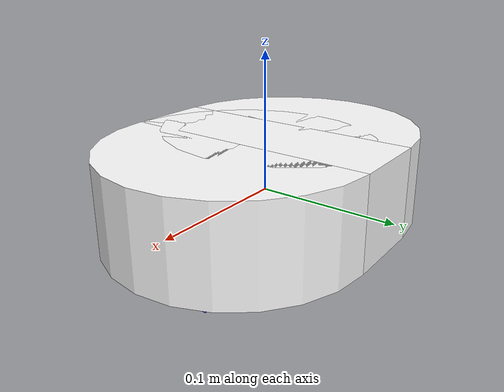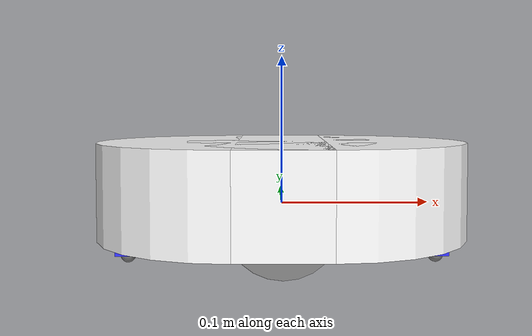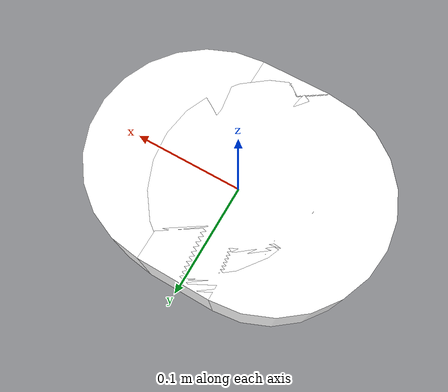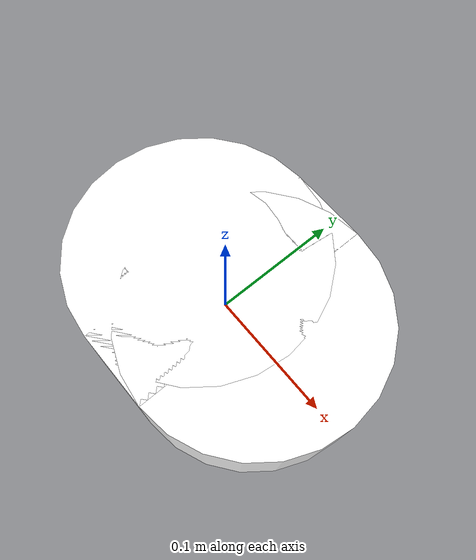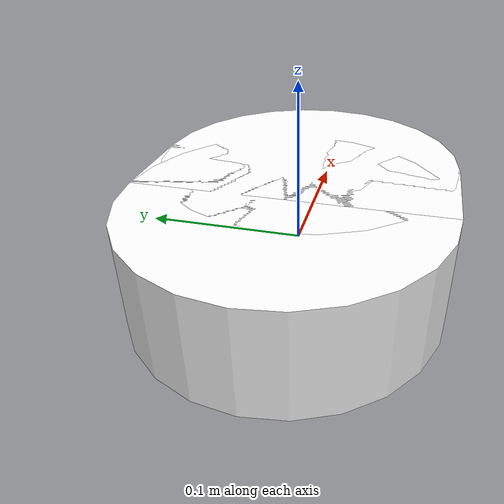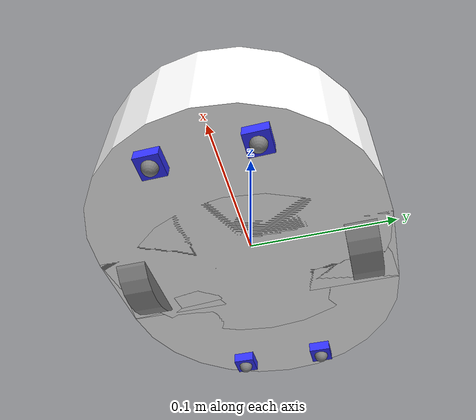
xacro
<?xml version="1.0"?>
<robot xmlns:xacro="http://www.ros.org.wiki.xacro">

    <xacro:include filename="rpibot_colors.xacro"/>
    <xacro:include filename="inertial_macros.xacro"/>

    <xacro:property name="robot_length" value="0.250"/>
    <xacro:property name="robot_width" value="0.190"/>
    <xacro:property name="robot_height" value="0.065"/>
    <xacro:property name="wheel_radius" value="0.035"/>
    <xacro:property name="wheel_thickness" value="0.020"/>
    <xacro:property name="wheel_base" value="0.150"/>

    <!-- BASE LINK -->

    <link name="base_link"></link>

    <!-- CHASSIS LINK -->

    <joint name="chassis_joint" type="fixed">
        <parent link ="base_link"/>
        <child link="chassis"/>
        <origin xyz="-${robot_length/2} 0 ${0.012 - wheel_radius}"/>
    </joint>

    <link name="chassis">
        <visual>
            <origin xyz="${robot_length/2} 0 ${robot_height/2}"/>
            <geometry>
                <box size="0.06 ${robot_width} ${robot_height}"/>
            </geometry>
            <material name="white"/>
        </visual>
        <visual>
            <origin xyz="${robot_length/2 + 0.03} 0 ${robot_height/2}"/>
            <geometry>
                <cylinder radius="${robot_width/2}" length="${robot_height}"/>
            </geometry>
            <material name="white"/>
        </visual>
        <visual>
            <origin xyz="${robot_length/2 - 0.03} 0 ${robot_height/2}"/>
            <geometry>
                <cylinder radius="${robot_width/2}" length="${robot_height}"/>
            </geometry>
            <material name="white"/>
        </visual>
        <collision>
            <origin xyz="${robot_length/2} 0 ${robot_height/2}"/>
            <geometry>
                <box size="0.06 ${robot_width} ${robot_height}"/>
            </geometry>
        </collision>
        <collision>
            <origin xyz="${robot_length/2 + 0.03} 0 ${robot_height/2}"/>
            <geometry>
                <cylinder radius="${robot_width/2}" length="${robot_height}"/>
            </geometry>
        </collision>
        <collision>
            <origin xyz="${robot_length/2 - 0.03} 0 ${robot_height/2}"/>
            <geometry>
                <cylinder radius="${robot_width/2}" length="${robot_height}"/>
            </geometry>
        </collision>
        <xacro:inertial_box mass="0.295" x="${robot_length}" y="${robot_width}" z="${robot_height}">
            <origin xyz="${robot_length/2} 0 ${robot_height/2}" rpy="0 0 0"/>
        </xacro:inertial_box>
    </link>

    <!-- LEFT WHEEL LINK -->

    <joint name="left_wheel_joint" type="continuous">
        <parent link ="base_link"/>
        <child link="left_wheel"/>
        <origin xyz="0 ${wheel_base/2} 0" rpy="-${pi/2} 0 0"/>
        <axis xyz="0 0 1"/>
    </joint>

    <link name="left_wheel">
        <visual>
            <geometry>
                <cylinder radius="${wheel_radius}" length="${wheel_thickness}"/>
            </geometry>
            <material name="grey"/>
        </visual>
        <collision>
            <geometry>
                <cylinder radius="${wheel_radius}" length="${wheel_thickness}"/>
            </geometry>
        </collision>
        <xacro:inertial_cylinder mass="0.045" length="${wheel_thickness}" radius="${wheel_radius}">
            <origin xyz="0 0 0" rpy="0 0 0"/>
        </xacro:inertial_cylinder>
    </link>

    <!-- RIGHT WHEEL LINK -->

    <joint name="right_wheel_joint" type="continuous">
        <parent link ="base_link"/>
        <child link="right_wheel"/>
        <origin xyz="0 -${wheel_base/2} 0" rpy="${pi/2} 0 0"/>
        <axis xyz="0 0 -1"/>
    </joint>

    <link name="right_wheel">
        <visual>
            <geometry>
                <cylinder radius="${wheel_radius}" length="${wheel_thickness}"/>
            </geometry>
            <material name="grey"/>
        </visual>
        <collision>
            <geometry>
                <cylinder radius="${wheel_radius}" length="${wheel_thickness}"/>
            </geometry>
        </collision>
        <xacro:inertial_cylinder mass="0.045" length="${wheel_thickness}" radius="${wheel_radius}">
            <origin xyz="0 0 0" rpy="0 0 0"/>
        </xacro:inertial_cylinder>
    </link>

    <!-- FRONT LEFT CASTER LINK -->

    <joint name="fl_caster_joint" type="fixed">
        <parent link ="chassis"/>
        <child link="fl_caster"/>
        <origin xyz="0.225 0.03 -0.007"/>
    </joint>3

    <link name="fl_caster">
        <visual>
            <geometry>
                <sphere radius=".005"/>
            </geometry>
            <material name="grey"/>
        </visual>
        <visual>
            <origin xyz="0 0 0.00565"/>
            <geometry>
                <box size=".015 .015 .0113"/>
            </geometry>
            <material name="blue"/>
        </visual>
        <collision>
            <geometry>
                <sphere radius=".005"/>
            </geometry>
        </collision>
        <collision>
            <origin xyz="0 0 0.00565"/>
            <geometry>
                <box size=".015 .015 .0113"/>
            </geometry>
        </collision>
        <xacro:inertial_box mass="0.001" x="0.015" y="0.015" z="0.0113">
            <origin xyz="0 0 0.00565" rpy="0 0 0"/>
        </xacro:inertial_box>
    </link>

    <!-- FRONT RIGHT CASTER LINK -->

    <joint name="fr_caster_joint" type="fixed">
        <parent link ="chassis"/>
        <child link="fr_caster"/>
        <origin xyz="0.225 -0.03 -0.007"/>
    </joint>

    <link name="fr_caster">
        <visual>
            <geometry>
                <sphere radius=".005"/>
            </geometry>
            <material name="grey"/>
        </visual>
        <visual>
            <origin xyz="0 0 0.00565"/>
            <geometry>
                <box size=".015 .015 .0113"/>
            </geometry>
            <material name="blue"/>
        </visual>
        <collision>
            <geometry>
                <sphere radius=".005"/>
            </geometry>
        </collision>
        <collision>
            <origin xyz="0 0 0.00565"/>
            <geometry>
                <box size=".015 .015 .0113"/>
            </geometry>
        </collision>
        <xacro:inertial_box mass="0.001" x="0.015" y="0.015" z="0.0113">
            <origin xyz="0 0 0.00565" rpy="0 0 0"/>
        </xacro:inertial_box>
    </link>

    <!-- BACK LEFT CASTER LINK -->

    <joint name="bl_caster_joint" type="fixed">
        <parent link ="chassis"/>
        <child link="bl_caster"/>
        <origin xyz="0.025 0.03 -0.007"/>
    </joint>3

    <link name="bl_caster">
        <visual>
            <geometry>
                <sphere radius=".005"/>
            </geometry>
            <material name="grey"/>
        </visual>
        <visual>
            <origin xyz="0 0 0.00565"/>
            <geometry>
                <box size=".015 .015 .0113"/>
            </geometry>
            <material name="blue"/>
        </visual>
        <collision>
            <geometry>
                <sphere radius=".005"/>
            </geometry>
        </collision>
        <collision>
            <origin xyz="0 0 0.00565"/>
            <geometry>
                <box size=".015 .015 .0113"/>
            </geometry>
        </collision>
        <xacro:inertial_box mass="0.001" x="0.015" y="0.015" z="0.0113">
            <origin xyz="0 0 0.00565" rpy="0 0 0"/>
        </xacro:inertial_box>
    </link>

    <!-- BACK RIGHT CASTER LINK -->

    <joint name="br_caster_joint" type="fixed">
        <parent link ="chassis"/>
        <child link="br_caster"/>
        <origin xyz="0.025 -0.03 -0.007"/>
    </joint>

    <link name="br_caster">
        <visual>
            <geometry>
                <sphere radius=".005"/>
            </geometry>
            <material name="grey"/>
        </visual>
        <visual>
            <origin xyz="0 0 0.00565"/>
            <geometry>
                <box size=".015 .015 .0113"/>
            </geometry>
            <material name="blue"/>
        </visual>
        <collision>
            <geometry>
                <sphere radius=".005"/>
            </geometry>
        </collision>
        <collision>
            <origin xyz="0 0 0.00565"/>
            <geometry>
                <box size=".015 .015 .0113"/>
            </geometry>
        </collision>
        <xacro:inertial_box mass="0.001" x="0.015" y="0.015" z="0.0113">
            <origin xyz="0 0 0.00565" rpy="0 0 0"/>
        </xacro:inertial_box>
    </link>

    <!-- Gazebo Parameters -->
    <gazebo reference="left_wheel">
        <mu1>1.0</mu1>
        <mu2>1.0</mu2>
    </gazebo>

    <gazebo reference="right_wheel">
        <mu1>1.0</mu1>
        <mu2>1.0</mu2>
    </gazebo>

    <gazebo reference="fl_caster">
        <mu1>0.000001</mu1>
        <mu2>0.000001</mu2>
    </gazebo>

    <gazebo reference="fr_caster">
        <mu1>0.000001</mu1>
        <mu2>0.000001</mu2>
    </gazebo>

    <gazebo reference="bl_caster">
        <mu1>0.000001</mu1>
        <mu2>0.000001</mu2>
    </gazebo>

    <gazebo reference="br_caster">
        <mu1>0.000001</mu1>
        <mu2>0.000001</mu2>
    </gazebo>

    <gazebo reference="base_link">
        <mu1>1.0</mu1>
        <mu2>1.0</mu2>
    </gazebo>

</robot>

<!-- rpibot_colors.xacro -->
<robot xmlns:xacro="http://www.ros.org.wiki.xacro">

    <material name="white">
        <color rgba="1 1 1 1"/>
    </material>

    <material name="orange">
        <color rgba="1 0.3 0.1 1"/>
    </material>

    <material name="blue">
        <color rgba="0.2 0.2 1 1"/>
    </material>

    <material name="black">
        <color rgba="0 0 0 1"/>
    </material>

    <material name="grey">
        <color rgba="0.5 0.5 0.5 1"/>
    </material>

    <material name="red">
        <color rgba="1 0 0 1"/>
    </material>

</robot>
